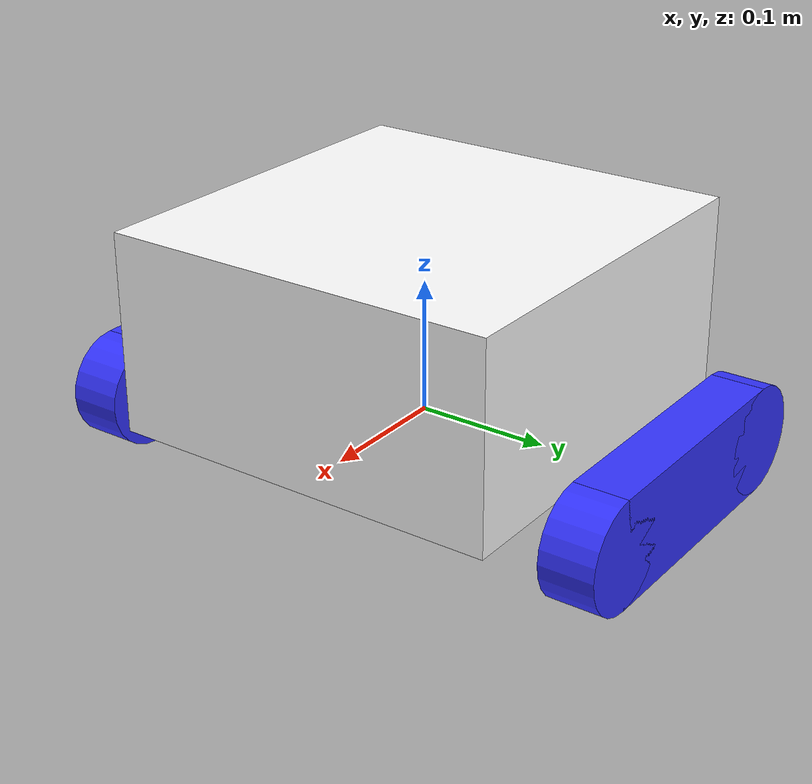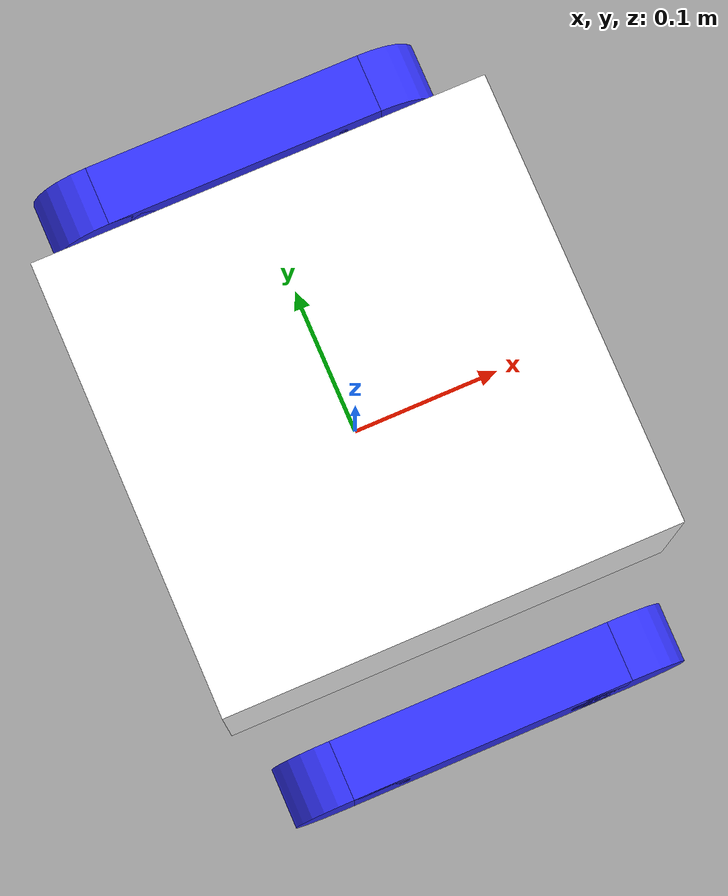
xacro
<?xml version="1.0"?>
<robot xmlns:xacro="http://www.ros.org/wiki/xacro">

    <xacro:include filename="inertial_macros.xacro"/>

    <xacro:property name="track_radius" value="0.04"/>
    <xacro:property name="track_length" value="0.27"/>
    <xacro:property name="track_width" value="0.04"/>

    <material name="white">
        <color rgba="1 1 1 1" />
    </material>

    <material name="orange">
        <color rgba="1 0.3 0.1 1"/>
    </material>

    <material name="blue">
        <color rgba="0.2 0.2 1 1"/>
    </material>

    <material name="black">
        <color rgba="0 0 0 1"/>
    </material>

    <!-- BASE LINK -->

    <link name="base_link">

    </link>

    <!-- CHASSIS LINK -->

    <joint name="chassis_joint" type="fixed">
        <parent link="base_link"/>
        <child link="chassis"/>
        <origin xyz="0 0 0"/>
    </joint>

    <link name="chassis">
        <visual>
            <origin xyz="0 0 0.075"/>
            <geometry>
                <box size="0.3 0.3 0.15"/>
            </geometry>
            <material name="white"/>
        </visual>
        <collision>
            <origin xyz="0 0 0.075"/>
            <geometry>
                <box size="0.3 0.3 0.15"/>
            </geometry>
        </collision>
        <xacro:inertial_box mass="0.5" x="0.3" y="0.3" z="0.15">
            <origin xyz="0 0 0.075" rpy="0 0 0"/>
        </xacro:inertial_box>
    </link>
    <gazebo reference="chassis">
        <material>Gazebo/White</material>
    </gazebo>
    <!-- LEFT WHEEL LINK -->

    <joint name="left_wheel_joint" type="continuous">
        <parent link="base_link"/>
        <child link="left_wheel"/>
        <origin xyz="0 0.2 0" rpy="0 0 0" />

    </joint>

    <link name="left_wheel">
        <visual>
            <geometry>
                <box size="${2*track_radius - track_length} ${track_width} ${track_radius*2} "/>
            </geometry>
            <material name="blue"/>
        </visual>
        <collision>
            <geometry>
                <box size="${2*track_radius - track_length} ${track_width} ${track_radius*2} "/>
            </geometry>
        </collision>
        <xacro:inertial_box mass="0.1" x="${2*track_radius - track_length}" y="${track_width}" z="${track_radius*2}" >
            <origin xyz="0 0 0" rpy="0 0 0"/>
        </xacro:inertial_box>

        <visual>
            <origin xyz="${track_length/2 + - track_radius} 0.0 0.0" rpy="${pi/2} 0.0 0.0"/>
            <geometry>
                <cylinder radius="${track_radius}" length="${track_width}"/>
            </geometry>
            <material name="blue"/>
        </visual>
        <collision>
            <origin xyz="${track_length/2 + - track_radius} 0.0 0.0" rpy="${pi/2} 0.0 0.0"/>
            <geometry>
                <cylinder radius="${track_radius}" length="${track_width}"/>
            </geometry>
        </collision>
        <xacro:inertial_cylinder mass="0.05" length="${track_radius}" radius="${track_width}">
            <origin xyz="${track_length/2 + - track_radius} 0.0 0.0" rpy="${pi/2} 0.0 0.0"/>
        </xacro:inertial_cylinder>

        <visual>
            <origin xyz="${-track_length/2 + track_radius} 0.0 0.0" rpy="${pi/2} 0.0 0.0"/>
            <geometry>
                <cylinder radius="${track_radius}" length="${track_width}"/>
            </geometry>
            <material name="blue"/>
        </visual>
        <collision>
            <origin xyz="${-track_length/2 + track_radius} 0.0 0.0" rpy="${pi/2} 0.0 0.0"/>
            <geometry>
                <cylinder radius="${track_radius}" length="${track_width}"/>
            </geometry>
        </collision>
        <xacro:inertial_cylinder mass="0.05" length="${track_radius}" radius="${track_width}">
            <origin xyz="${-track_length/2 + track_radius} 0.0 0.0" rpy="${pi/2} 0.0 0.0"/>
        </xacro:inertial_cylinder>
    </link>

    <gazebo reference="left_wheel">
        <material>Gazebo/Blue</material>
    </gazebo>

    <!-- RIGHT WHEEL LINK -->

    <joint name="right_wheel_joint" type="continuous">
        <parent link="base_link"/>
        <child link="right_wheel"/>
        <origin xyz="0 -0.2 0" rpy="0 0 0" />
    </joint>

    <link name="right_wheel">
        <visual>
            <geometry>
                <box size="${2*track_radius - track_length} ${track_width} ${track_radius*2} "/>
            </geometry>
            <material name="blue"/>
        </visual>
        <collision>
            <geometry>
                <box size="${2*track_radius - track_length} ${track_width} ${track_radius*2} "/>
            </geometry>
        </collision>
        <xacro:inertial_box mass="0.1" x="${2*track_radius - track_length}" y="${track_width}" z="${track_radius*2}" >
            <origin xyz="0 0 0" rpy="0 0 0"/>
        </xacro:inertial_box>

        <visual>
            <origin xyz="${track_length/2 + - track_radius} 0.0 0.0" rpy="${pi/2} 0.0 0.0"/>
            <geometry>
                <cylinder radius="${track_radius}" length="${track_width}"/>
            </geometry>
            <material name="blue"/>
        </visual>
        <collision>
            <origin xyz="${track_length/2 + - track_radius} 0.0 0.0" rpy="${pi/2} 0.0 0.0"/>
            <geometry>
                <cylinder radius="${track_radius}" length="${track_width}"/>
            </geometry>
        </collision>
        <xacro:inertial_cylinder mass="0.05" length="${track_radius}" radius="${track_width}">
            <origin xyz="${track_length/2 + - track_radius} 0.0 0.0" rpy="${pi/2} 0.0 0.0"/>

        </xacro:inertial_cylinder>

        <visual>
            <origin xyz="${-track_length/2 + track_radius} 0.0 0.0" rpy="${pi/2} 0.0 0.0"/>
            <geometry>
                <cylinder radius="${track_radius}" length="${track_width}"/>
            </geometry>
            <material name="blue"/>
        </visual>
        <collision>
            <origin xyz="${-track_length/2 + track_radius} 0.0 0.0" rpy="${pi/2} 0.0 0.0"/>
            <geometry>
                <cylinder radius="${track_radius}" length="${track_width}"/>
            </geometry>
        </collision>
        <xacro:inertial_cylinder mass="0.05" length="${track_radius}" radius="${track_width}">
            <origin xyz="${-track_length/2 + track_radius} 0.0 0.0" rpy="${pi/2} 0.0 0.0"/>
        </xacro:inertial_cylinder>
    </link>
    <gazebo
        reference="right_wheel">
        <material>Gazebo/Blue</material>
    </gazebo>
</robot>
